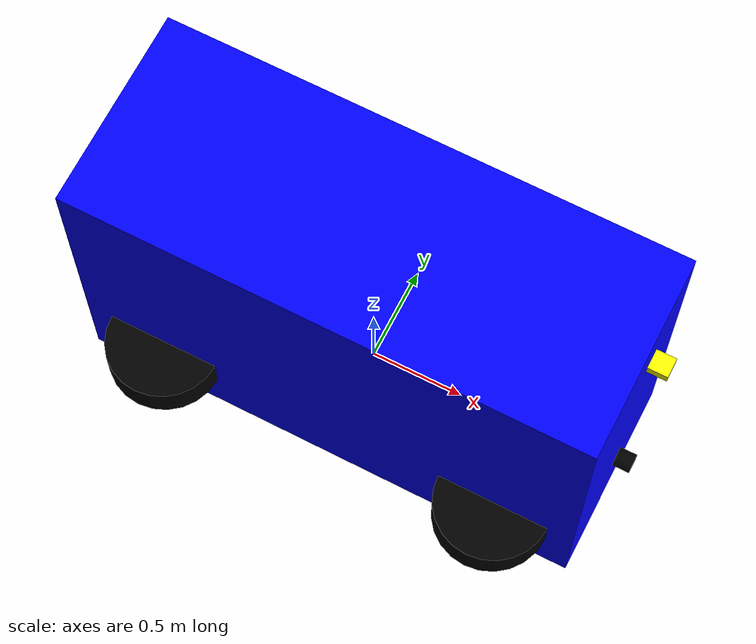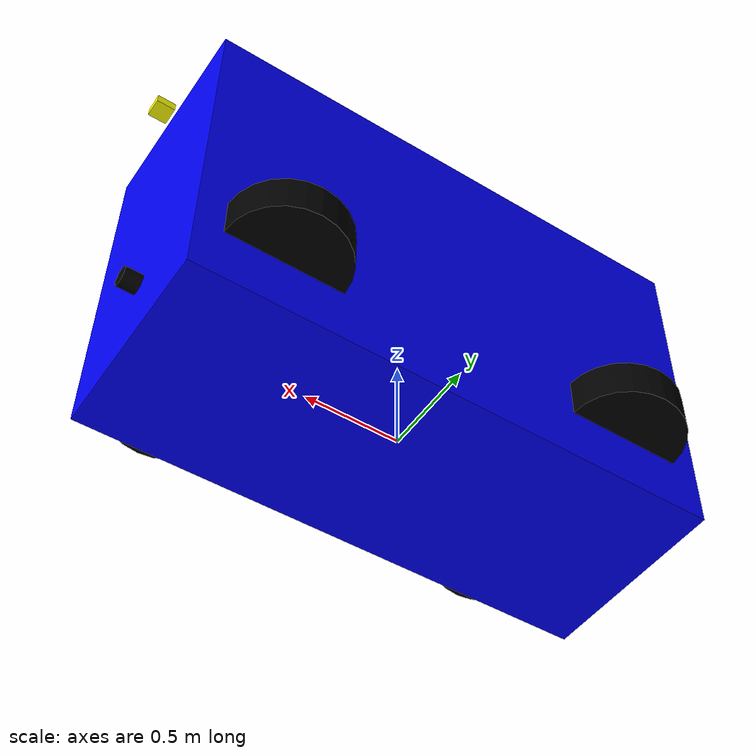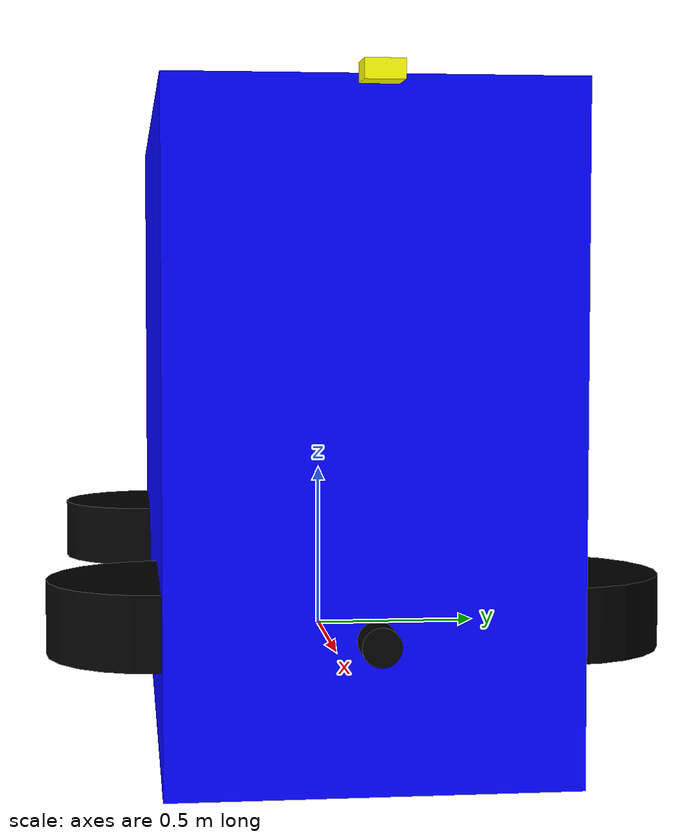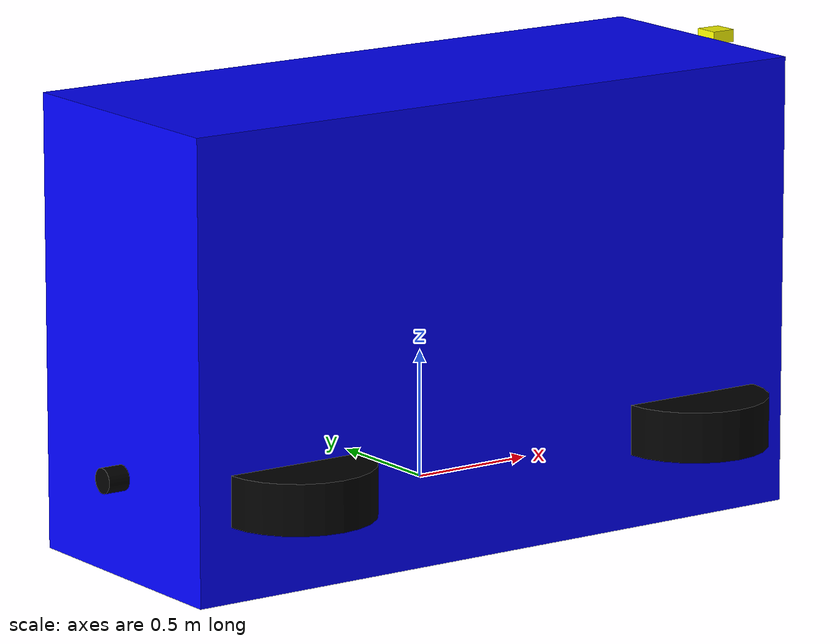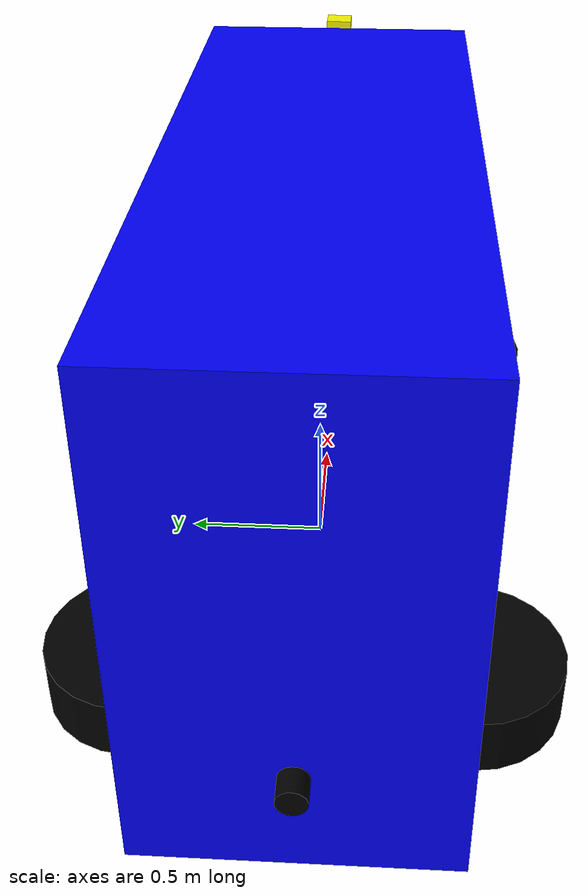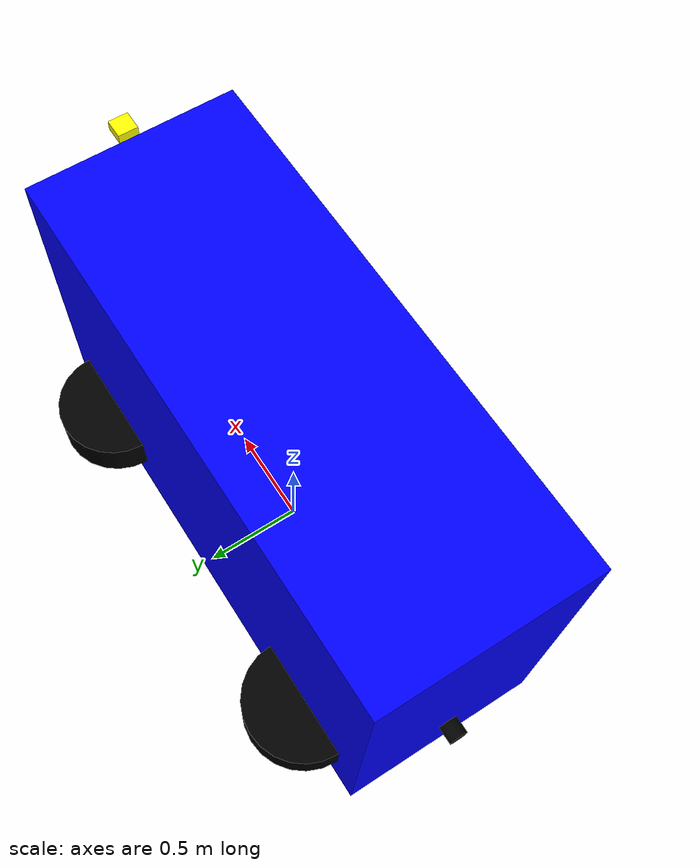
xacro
<?xml version="1.0"?>
<robot xmlns:xacro="http://www.ros.org/wiki/xacro" name="bee1">

  <!-- Vehicle Parameters -->
  <xacro:property name="wheelbase" value="1.86"/>
  <xacro:property name="track_width" value="1.06"/>
  <xacro:property name="vehicle_length" value="2.74"/>
  <xacro:property name="vehicle_width" value="1.06"/>
  <xacro:property name="vehicle_height" value="1.785"/>
  <xacro:property name="vehicle_mass" value="835"/>

  <!-- Include sensors -->
  <xacro:include filename="$(find bee1_cartographer)/urdf/bee1_sensors.urdf.xacro"/>

  <!-- Base Link -->
  <link name="base_link">
    <visual>
      <origin xyz="0 0 0.5" rpy="0 0 0"/>
      <geometry>
        <box size="${vehicle_length} ${vehicle_width} ${vehicle_height}"/>
      </geometry>
      <material name="blue">
        <color rgba="0.0 0.0 1.0 1.0"/>
      </material>
    </visual>
    <collision>
      <origin xyz="0 0 0.5" rpy="0 0 0"/>
      <geometry>
        <box size="${vehicle_length} ${vehicle_width} ${vehicle_height}"/>
      </geometry>
    </collision>
    <inertial>
      <origin xyz="0 0 0.5" rpy="0 0 0"/>
      <mass value="${vehicle_mass}"/>
      <inertia ixx="100.0" ixy="0.0" ixz="0.0"
               iyy="100.0" iyz="0.0"
               izz="100.0"/>
    </inertial>
  </link>

  <!-- Base Footprint -->
  <link name="base_footprint"/>
  <joint name="base_footprint_joint" type="fixed">
    <parent link="base_footprint"/>
    <child link="base_link"/>
    <origin xyz="0 0 0.2" rpy="0 0 0"/>
  </joint>

  <!-- Front Axle -->
  <link name="front_axle">
    <visual>
      <geometry>
        <cylinder radius="0.05" length="${track_width}"/>
      </geometry>
      <material name="black">
        <color rgba="0.0 0.0 0.0 1.0"/>
      </material>
    </visual>
  </link>
  <joint name="front_axle_joint" type="fixed">
    <parent link="base_link"/>
    <child link="front_axle"/>
    <origin xyz="${wheelbase/2} 0 0" rpy="0 1.5708 0"/>
  </joint>

  <!-- Rear Axle -->
  <link name="rear_axle">
    <visual>
      <geometry>
        <cylinder radius="0.05" length="${track_width}"/>
      </geometry>
      <material name="black">
        <color rgba="0.0 0.0 0.0 1.0"/>
      </material>
    </visual>
  </link>
  <joint name="rear_axle_joint" type="fixed">
    <parent link="base_link"/>
    <child link="rear_axle"/>
    <origin xyz="${-wheelbase/2} 0 0" rpy="0 1.5708 0"/>
  </joint>

  <!-- Wheels -->
  <xacro:macro name="wheel" params="name x y">
    <link name="${name}_wheel">
      <visual>
        <geometry>
          <cylinder radius="0.3" length="0.2"/>
        </geometry>
        <material name="black">
          <color rgba="0.0 0.0 0.0 1.0"/>
        </material>
      </visual>
      <collision>
        <geometry>
          <cylinder radius="0.3" length="0.2"/>
        </geometry>
      </collision>
      <inertial>
        <mass value="20"/>
        <inertia ixx="1.0" ixy="0.0" ixz="0.0"
                 iyy="1.0" iyz="0.0"
                 izz="1.0"/>
      </inertial>
    </link>
    <joint name="${name}_wheel_joint" type="continuous">
      <parent link="base_link"/>
      <child link="${name}_wheel"/>
      <origin xyz="${x} ${y} 0" rpy="0 0 0"/>
      <axis xyz="0 1 0"/>
    </joint>
  </xacro:macro>

  <xacro:wheel name="front_left" x="${wheelbase/2}" y="${track_width/2}"/>
  <xacro:wheel name="front_right" x="${wheelbase/2}" y="${-track_width/2}"/>
  <xacro:wheel name="rear_left" x="${-wheelbase/2}" y="${track_width/2}"/>
  <xacro:wheel name="rear_right" x="${-wheelbase/2}" y="${-track_width/2}"/>

  <!-- Sensors -->
  <xacro:vlp16_sensor parent="base_link" name="velodyne" topic="/velodyne_points">
    <origin xyz="-0.177 0 0.620" rpy="0 0 0"/>
  </xacro:vlp16_sensor>

  <xacro:gps_sensor parent="base_link" name="gps">
    <origin xyz="1.440 0 1.390" rpy="0 0 0"/>
  </xacro:gps_sensor>

  <xacro:imu_sensor parent="base_link" name="imu">
    <origin xyz="0 0 0.5" rpy="0 0 0"/>
  </xacro:imu_sensor>

</robot>

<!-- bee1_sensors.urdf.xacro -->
<robot xmlns:xacro="http://www.ros.org/wiki/xacro">

  <!-- Velodyne VLP16 LiDAR -->
  <xacro:macro name="vlp16_sensor" params="parent name topic *origin">
    <link name="${name}_link">
      <visual>
        <geometry>
          <cylinder radius="0.05" length="0.1"/>
        </geometry>
        <material name="vlp16_material">
          <color rgba="0.0 0.0 0.0 1.0"/>
        </material>
      </visual>
      <collision>
        <geometry>
          <cylinder radius="0.05" length="0.1"/>
        </geometry>
      </collision>
      <inertial>
        <mass value="0.8"/>
        <inertia ixx="0.001" ixy="0" ixz="0"
                 iyy="0.001" iyz="0"
                 izz="0.001"/>
      </inertial>
    </link>

    <joint name="${name}_joint" type="fixed">
      <parent link="${parent}"/>
      <child link="${name}_link"/>
      <xacro:insert_block name="origin"/>
    </joint>

    <gazebo reference="${name}_link">
      <sensor type="ray" name="${name}">
        <pose>0 0 0 0 0 0</pose>
        <visualize>false</visualize>
        <update_rate>10</update_rate>
        <ray>
          <scan>
            <horizontal>
              <samples>900</samples>
              <resolution>1</resolution>
              <min_angle>-3.141592653589793</min_angle>
              <max_angle>3.141592653589793</max_angle>
            </horizontal>
            <vertical>
              <samples>16</samples>
              <resolution>1</resolution>
              <min_angle>-0.261799387799</min_angle>
              <max_angle>0.261799387799</max_angle>
            </vertical>
          </scan>
          <range>
            <min>0.1</min>
            <max>100.0</max>
            <resolution>0.01</resolution>
          </range>
          <noise>
            <type>gaussian</type>
            <mean>0.0</mean>
            <stddev>0.01</stddev>
          </noise>
        </ray>
        <plugin name="gazebo_ros_laser_controller" filename="libgazebo_ros_velodyne_laser.so">
          <topicName>${topic}</topicName>
          <frameName>${name}_link</frameName>
          <organize_cloud>false</organize_cloud>
          <min_range>0.1</min_range>
          <max_range>100.0</max_range>
          <gaussianNoise>0.008</gaussianNoise>
        </plugin>
      </sensor>
    </gazebo>
  </xacro:macro>

  <!-- GPS Sensor -->
  <xacro:macro name="gps_sensor" params="parent name *origin">
    <link name="${name}_link">
      <visual>
        <geometry>
          <box size="0.1 0.1 0.05"/>
        </geometry>
        <material name="gps_material">
          <color rgba="1.0 1.0 0.0 1.0"/>
        </material>
      </visual>
      <collision>
        <geometry>
          <box size="0.1 0.1 0.05"/>
        </geometry>
      </collision>
      <inertial>
        <mass value="0.1"/>
        <inertia ixx="0.001" ixy="0" ixz="0"
                 iyy="0.001" iyz="0"
                 izz="0.001"/>
      </inertial>
    </link>

    <joint name="${name}_joint" type="fixed">
      <parent link="${parent}"/>
      <child link="${name}_link"/>
      <xacro:insert_block name="origin"/>
    </joint>

    <gazebo reference="${name}_link">
      <sensor type="gps" name="${name}">
        <always_on>true</always_on>
        <update_rate>10.0</update_rate>
        <plugin name="gazebo_ros_gps" filename="libgazebo_ros_gps_sensor.so">
          <ros>
            <namespace>/</namespace>
            <argument>~/out:=gps/fix</argument>
          </ros>
          <frame_name>${name}_link</frame_name>
        </plugin>
      </sensor>
    </gazebo>
  </xacro:macro>

  <!-- IMU Sensor -->
  <xacro:macro name="imu_sensor" params="parent name *origin">
    <link name="${name}_link">
      <visual>
        <geometry>
          <box size="0.05 0.05 0.02"/>
        </geometry>
        <material name="imu_material">
          <color rgba="0.0 1.0 0.0 1.0"/>
        </material>
      </visual>
      <collision>
        <geometry>
          <box size="0.05 0.05 0.02"/>
        </geometry>
      </collision>
      <inertial>
        <mass value="0.05"/>
        <inertia ixx="0.001" ixy="0" ixz="0"
                 iyy="0.001" iyz="0"
                 izz="0.001"/>
      </inertial>
    </link>

    <joint name="${name}_joint" type="fixed">
      <parent link="${parent}"/>
      <child link="${name}_link"/>
      <xacro:insert_block name="origin"/>
    </joint>

    <gazebo reference="${name}_link">
      <gravity>true</gravity>
      <sensor name="${name}" type="imu">
        <always_on>true</always_on>
        <update_rate>100</update_rate>
        <visualize>true</visualize>
        <imu>
          <angular_velocity>
            <x>
              <noise type="gaussian">
                <mean>0.0</mean>
                <stddev>2e-4</stddev>
                <bias_mean>0.0000075</bias_mean>
                <bias_stddev>0.0000008</bias_stddev>
              </noise>
            </x>
            <y>
              <noise type="gaussian">
                <mean>0.0</mean>
                <stddev>2e-4</stddev>
                <bias_mean>0.0000075</bias_mean>
                <bias_stddev>0.0000008</bias_stddev>
              </noise>
            </y>
            <z>
              <noise type="gaussian">
                <mean>0.0</mean>
                <stddev>2e-4</stddev>
                <bias_mean>0.0000075</bias_mean>
                <bias_stddev>0.0000008</bias_stddev>
              </noise>
            </z>
          </angular_velocity>
          <linear_acceleration>
            <x>
              <noise type="gaussian">
                <mean>0.0</mean>
                <stddev>1.7e-2</stddev>
                <bias_mean>0.1</bias_mean>
                <bias_stddev>0.001</bias_stddev>
              </noise>
            </x>
            <y>
              <noise type="gaussian">
                <mean>0.0</mean>
                <stddev>1.7e-2</stddev>
                <bias_mean>0.1</bias_mean>
                <bias_stddev>0.001</bias_stddev>
              </noise>
            </y>
            <z>
              <noise type="gaussian">
                <mean>0.0</mean>
                <stddev>1.7e-2</stddev>
                <bias_mean>0.1</bias_mean>
                <bias_stddev>0.001</bias_stddev>
              </noise>
            </z>
          </linear_acceleration>
        </imu>
        <plugin filename="libgazebo_ros_imu_sensor.so" name="imu_plugin">
          <ros>
            <namespace>/</namespace>
            <argument>~/out:=imu/data</argument>
          </ros>
          <frame_name>${name}_link</frame_name>
        </plugin>
      </sensor>
    </gazebo>
  </xacro:macro>

</robot>
